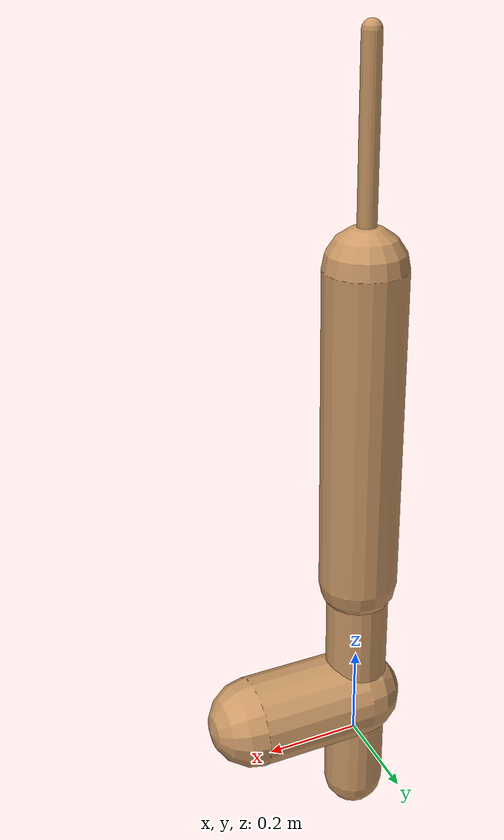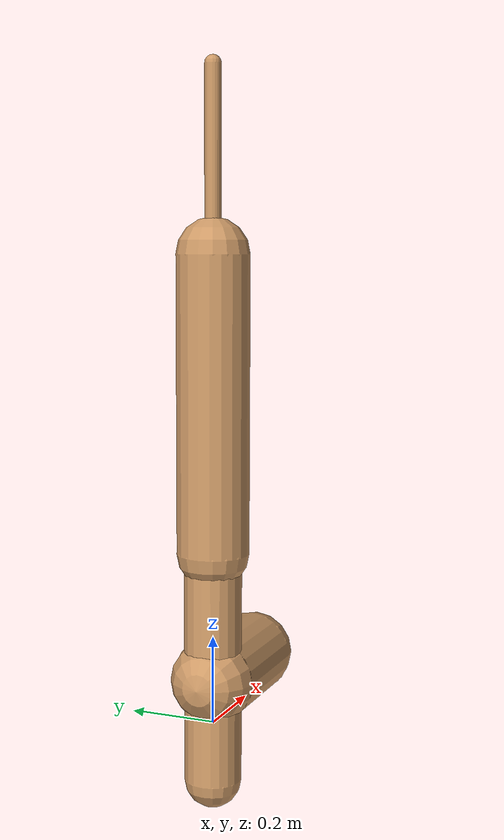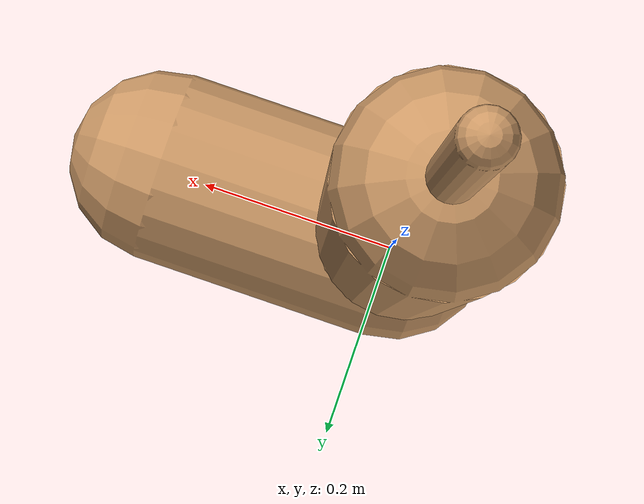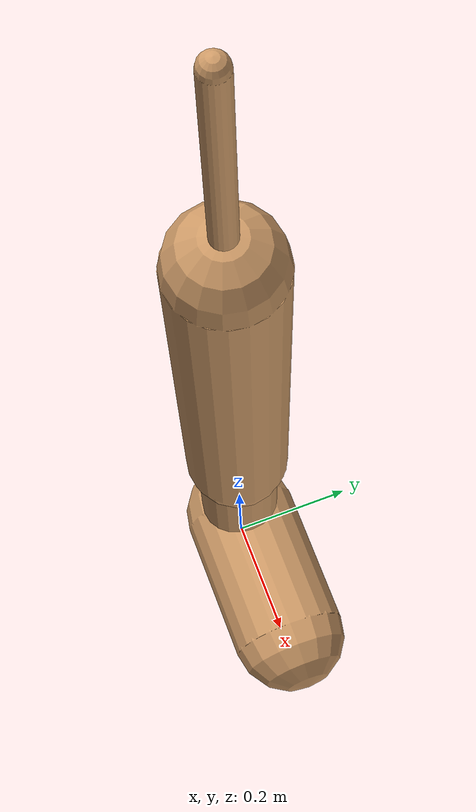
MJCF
<mujoco model="walker2d">
  <compiler angle="degree" coordinate="global" inertiafromgeom="true" />
  <default>
    <joint armature="0.01" damping=".1" limited="true" />
    <geom conaffinity="0" condim="3" contype="1" density="1000" friction="0.8 .1 .1" rgba="0.8 0.6 .4 1" />
  </default>
  <option integrator="RK4" timestep="0.002" />
  <worldbody>

    <body name="torso" pos="0 0 0.44131581881074955">
      <joint armature="0" axis="1 0 0" damping="0" limited="false" name="ignorex" pos="0 0 0" stiffness="0" type="slide" />
      <joint armature="0" axis="0 0 1" damping="0" limited="false" name="ignorez" pos="0 0 0" ref="1.25" stiffness="0" type="slide" />
      <joint armature="0" axis="0 1 0" damping="0" limited="false" name="ignorey" pos="0 0 0" stiffness="0" type="hinge" />
      <geom fromto="0 0 1.45 0 0 1.05" name="torso_geom" size="0.018330303697626844" type="capsule" />
      <body name="thigh">
        <joint axis="0 -1 0" name="thigh_joint" pos="0 0 1.05" range="-150 0" type="hinge" />
        <geom fromto="0.0 0.0 1.05 0.0 0.0 0.39095566477385546" name="thigh_geom" size="0.08079516963674316" type="capsule" />
        <body name="leg" pos="0.0 0.0 -0.20904433522614452">
          <joint axis="0 -1 0" name="leg_joint" pos="0 0 0.6" range="-150 0" type="hinge" />
          <geom fromto="0.0 0.0 0.6 0.0 0.0 -0.132271483584605" name="leg_geom" size="0.06463613570939453" type="capsule" />
          <body name="foot" pos="0.0 0.0 -0.232271483584605">
            <joint axis="0 -1 0" name="foot_joint" pos="0 0 0.1" range="-45 45" type="hinge" />
            <geom fromto="-0.0 0.0 0.1 0.23987936630415674 0.0 0.1" name="foot_geom" size="0.09515866704088205" type="capsule" />
          </body>
        </body>
      </body>

      <body name="thigh_left">
        <joint axis="0 -1 0" name="thigh_left_joint" pos="0 0 1.05" range="-150 0" type="hinge" />
        <geom fromto="0.0 0.0 1.05 0.0 0.0 0.39095566477385546" name="thigh_left_geom" rgba=".7 .3 .6 1" size="0.08079516963674316" type="capsule" />
        <body name="leg_left" pos="0.0 0.0 -0.20904433522614452">
          <joint axis="0 -1 0" name="leg_left_joint" pos="0 0 0.6" range="-150 0" type="hinge" />
          <geom fromto="0.0 0.0 0.6 0.0 0.0 -0.132271483584605" name="leg_left_geom" rgba=".7 .3 .6 1" size="0.06463613570939453" type="capsule" />
          <body name="foot_left" pos="0.0 0.0 -0.232271483584605">
            <joint axis="0 -1 0" name="foot_left_joint" pos="0 0 0.1" range="-45 45" type="hinge" />
            <geom fromto="-0.0 0.0 0.1 0.23987936630415674 0.0 0.1" name="foot_left_geom" rgba=".7 .3 .6 1" size="0.09515866704088205" type="capsule" />
          </body>
        </body>
      </body>
    </body>
  </worldbody>
  <actuator>

    <motor ctrllimited="true" ctrlrange="-1.0 1.0" gear="100" joint="thigh_joint" />
    <motor ctrllimited="true" ctrlrange="-1.0 1.0" gear="100" joint="leg_joint" />
    <motor ctrllimited="true" ctrlrange="-1.0 1.0" gear="100" joint="foot_joint" />
    <motor ctrllimited="true" ctrlrange="-1.0 1.0" gear="100" joint="thigh_left_joint" />
    <motor ctrllimited="true" ctrlrange="-1.0 1.0" gear="100" joint="leg_left_joint" />
    <motor ctrllimited="true" ctrlrange="-1.0 1.0" gear="100" joint="foot_left_joint" />

  </actuator>
</mujoco>
